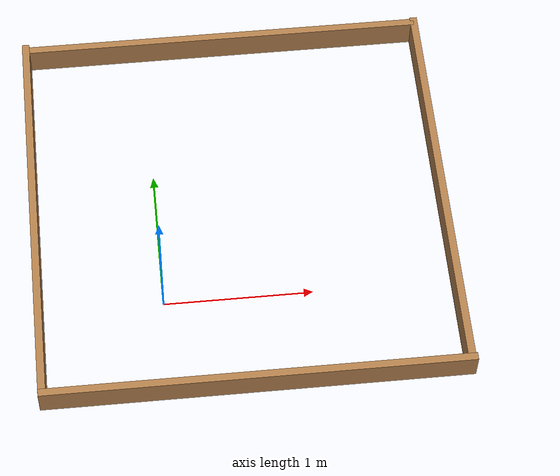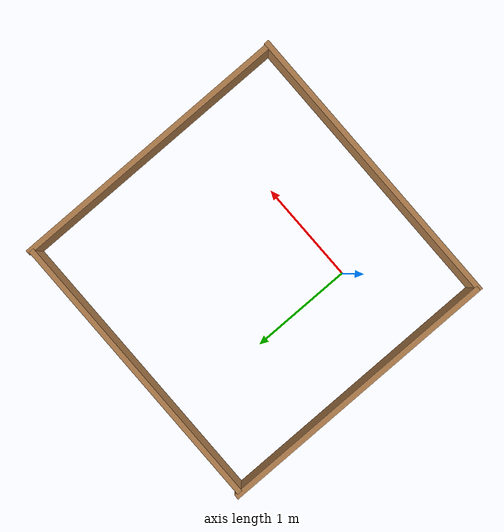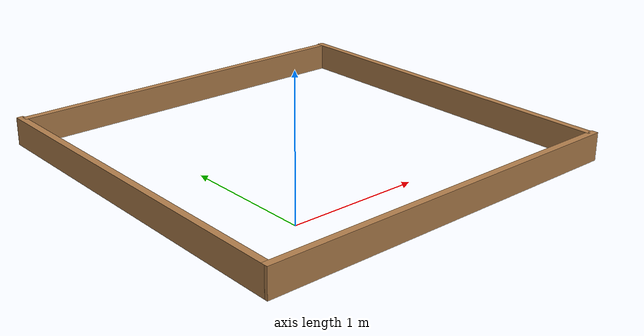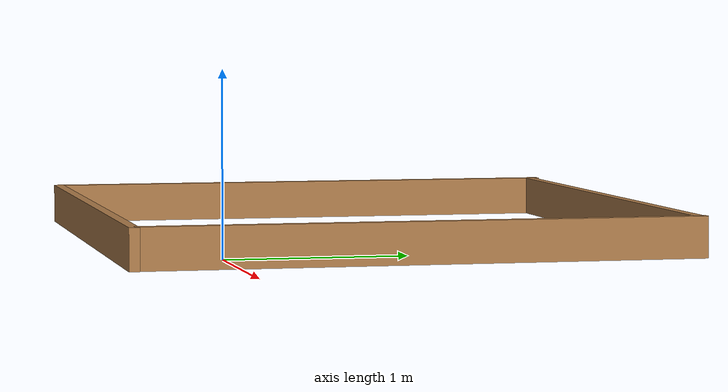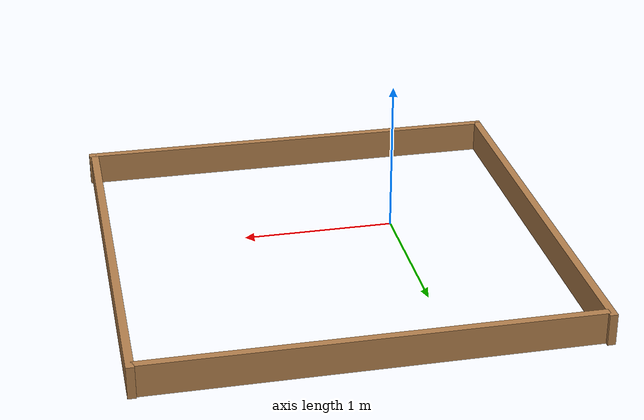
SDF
<?xml version='1.0'?>
<sdf version='1.6'>
  <model name='turtlebot3_square'>
    <link name='Wall_0'>
      <pose frame=''>0.557021 1.925 0 0 -0 0</pose>
      <self_collide>0</self_collide>
      <enable_wind>0</enable_wind>
      <kinematic>0</kinematic>
      <inertial>
        <inertia>
          <ixx>0</ixx>
          <ixy>0</ixy>
          <ixz>0</ixz>
          <iyy>0</iyy>
          <iyz>0</iyz>
          <izz>0</izz>
        </inertia>
        <mass>0</mass>
        <pose frame=''>0 0 0 0 -0 0</pose>
      </inertial>
      <visual name='Wall_0_Visual'>
        <pose frame=''>0 0 0.25 0 -0 0</pose>
        <geometry>
          <box>
            <size>2.7317 0.05 0.2</size>
          </box>
        </geometry>
        <material>
          <script>
            <uri>file://media/materials/scripts/gazebo.material</uri>
            <name>Gazebo/Wood</name>
          </script>
          <ambient>1 1 1 1</ambient>
        </material>
        <transparency>0</transparency>
        <cast_shadows>1</cast_shadows>
      </visual>
      <collision name='Wall_0_Collision'>
        <laser_retro>0</laser_retro>
        <max_contacts>10</max_contacts>
        <pose frame=''>0 0 0.25 0 -0 0</pose>
        <geometry>
          <box>
            <size>2.7317 0.05 0.2</size>
          </box>
        </geometry>
        <surface>
          <friction>
            <ode>
              <mu>1</mu>
              <mu2>1</mu2>
              <fdir1>0 0 0</fdir1>
              <slip1>0</slip1>
              <slip2>0</slip2>
            </ode>
            <torsional>
              <coefficient>1</coefficient>
              <patch_radius>0</patch_radius>
              <surface_radius>0</surface_radius>
              <use_patch_radius>1</use_patch_radius>
              <ode>
                <slip>0</slip>
              </ode>
            </torsional>
          </friction>
          <bounce>
            <restitution_coefficient>0</restitution_coefficient>
            <threshold>1e+06</threshold>
          </bounce>
          <contact>
            <collide_without_contact>0</collide_without_contact>
            <collide_without_contact_bitmask>1</collide_without_contact_bitmask>
            <collide_bitmask>1</collide_bitmask>
            <ode>
              <soft_cfm>0</soft_cfm>
              <soft_erp>0.2</soft_erp>
              <kp>1e+13</kp>
              <kd>1</kd>
              <max_vel>0.01</max_vel>
              <min_depth>0</min_depth>
            </ode>
            <bullet>
              <split_impulse>1</split_impulse>
              <split_impulse_penetration_threshold>-0.01</split_impulse_penetration_threshold>
              <soft_cfm>0</soft_cfm>
              <soft_erp>0.2</soft_erp>
              <kp>1e+13</kp>
              <kd>1</kd>
            </bullet>
          </contact>
        </surface>
      </collision>
    </link>
    <link name='Wall_2'>
      <pose frame=''>-0.819251 0.606379 0 0 0 -1.5708</pose>
      <self_collide>0</self_collide>
      <enable_wind>0</enable_wind>
      <kinematic>0</kinematic>
      <inertial>
        <inertia>
          <ixx>0</ixx>
          <ixy>0</ixy>
          <ixz>0</ixz>
          <iyy>0</iyy>
          <iyz>0</iyz>
          <izz>0</izz>
        </inertia>
        <mass>0</mass>
        <pose frame=''>0 0 0 0 -0 0</pose>
      </inertial>
      <visual name='Wall_2_Visual'>
        <pose frame=''>0 0 0.25 0 -0 0</pose>
        <geometry>
          <box>
            <size>2.73482 0.05 0.2</size>
          </box>
        </geometry>
        <material>
          <script>
            <uri>file://media/materials/scripts/gazebo.material</uri>
            <name>Gazebo/Wood</name>
          </script>
          <ambient>1 1 1 1</ambient>
        </material>
        <transparency>0</transparency>
        <cast_shadows>1</cast_shadows>
      </visual>
      <collision name='Wall_2_Collision'>
        <laser_retro>0</laser_retro>
        <max_contacts>10</max_contacts>
        <pose frame=''>0 0 0.25 0 -0 0</pose>
        <geometry>
          <box>
            <size>2.73482 0.05 0.2</size>
          </box>
        </geometry>
        <surface>
          <friction>
            <ode>
              <mu>1</mu>
              <mu2>1</mu2>
              <fdir1>0 0 0</fdir1>
              <slip1>0</slip1>
              <slip2>0</slip2>
            </ode>
            <torsional>
              <coefficient>1</coefficient>
              <patch_radius>0</patch_radius>
              <surface_radius>0</surface_radius>
              <use_patch_radius>1</use_patch_radius>
              <ode>
                <slip>0</slip>
              </ode>
            </torsional>
          </friction>
          <bounce>
            <restitution_coefficient>0</restitution_coefficient>
            <threshold>1e+06</threshold>
          </bounce>
          <contact>
            <collide_without_contact>0</collide_without_contact>
            <collide_without_contact_bitmask>1</collide_without_contact_bitmask>
            <collide_bitmask>1</collide_bitmask>
            <ode>
              <soft_cfm>0</soft_cfm>
              <soft_erp>0.2</soft_erp>
              <kp>1e+13</kp>
              <kd>1</kd>
              <max_vel>0.01</max_vel>
              <min_depth>0</min_depth>
            </ode>
            <bullet>
              <split_impulse>1</split_impulse>
              <split_impulse_penetration_threshold>-0.01</split_impulse_penetration_threshold>
              <soft_cfm>0</soft_cfm>
              <soft_erp>0.2</soft_erp>
              <kp>1e+13</kp>
              <kd>1</kd>
            </bullet>
          </contact>
        </surface>
      </collision>
    </link>
    <link name='Wall_3'>
      <pose frame=''>0.558829 -0.759815 0 0 -0 0</pose>
      <self_collide>0</self_collide>
      <enable_wind>0</enable_wind>
      <kinematic>0</kinematic>
      <inertial>
        <inertia>
          <ixx>0</ixx>
          <ixy>0</ixy>
          <ixz>0</ixz>
          <iyy>0</iyy>
          <iyz>0</iyz>
          <izz>0</izz>
        </inertia>
        <mass>0</mass>
        <pose frame=''>0 0 0 0 -0 0</pose>
      </inertial>
      <visual name='Wall_3_Visual'>
        <pose frame=''>0 0 0.25 0 -0 0</pose>
        <geometry>
          <box>
            <size>2.80543 0.05 0.2</size>
          </box>
        </geometry>
        <material>
          <script>
            <uri>file://media/materials/scripts/gazebo.material</uri>
            <name>Gazebo/Wood</name>
          </script>
          <ambient>1 1 1 1</ambient>
        </material>
        <transparency>0</transparency>
        <cast_shadows>1</cast_shadows>
      </visual>
      <collision name='Wall_3_Collision'>
        <laser_retro>0</laser_retro>
        <max_contacts>10</max_contacts>
        <pose frame=''>0 0 0.25 0 -0 0</pose>
        <geometry>
          <box>
            <size>2.80543 0.05 0.2</size>
          </box>
        </geometry>
        <surface>
          <friction>
            <ode>
              <mu>1</mu>
              <mu2>1</mu2>
              <fdir1>0 0 0</fdir1>
              <slip1>0</slip1>
              <slip2>0</slip2>
            </ode>
            <torsional>
              <coefficient>1</coefficient>
              <patch_radius>0</patch_radius>
              <surface_radius>0</surface_radius>
              <use_patch_radius>1</use_patch_radius>
              <ode>
                <slip>0</slip>
              </ode>
            </torsional>
          </friction>
          <bounce>
            <restitution_coefficient>0</restitution_coefficient>
            <threshold>1e+06</threshold>
          </bounce>
          <contact>
            <collide_without_contact>0</collide_without_contact>
            <collide_without_contact_bitmask>1</collide_without_contact_bitmask>
            <collide_bitmask>1</collide_bitmask>
            <ode>
              <soft_cfm>0</soft_cfm>
              <soft_erp>0.2</soft_erp>
              <kp>1e+13</kp>
              <kd>1</kd>
              <max_vel>0.01</max_vel>
              <min_depth>0</min_depth>
            </ode>
            <bullet>
              <split_impulse>1</split_impulse>
              <split_impulse_penetration_threshold>-0.01</split_impulse_penetration_threshold>
              <soft_cfm>0</soft_cfm>
              <soft_erp>0.2</soft_erp>
              <kp>1e+13</kp>
              <kd>1</kd>
            </bullet>
          </contact>
        </surface>
      </collision>
    </link>
    <link name='Wall_4'>
      <pose frame=''>1.925 0.603331 0 0 -0 1.5708</pose>
      <self_collide>0</self_collide>
      <enable_wind>0</enable_wind>
      <kinematic>0</kinematic>
      <inertial>
        <inertia>
          <ixx>0</ixx>
          <ixy>0</ixy>
          <ixz>0</ixz>
          <iyy>0</iyy>
          <iyz>0</iyz>
          <izz>0</izz>
        </inertia>
        <mass>0</mass>
        <pose frame=''>0 0 0 0 -0 0</pose>
      </inertial>
      <visual name='Wall_4_Visual'>
        <pose frame=''>0 0 0.25 0 -0 0</pose>
        <geometry>
          <box>
            <size>2.71507 0.05 0.2</size>
          </box>
        </geometry>
        <material>
          <script>
            <uri>file://media/materials/scripts/gazebo.material</uri>
            <name>Gazebo/Wood</name>
          </script>
          <ambient>1 1 1 1</ambient>
        </material>
        <transparency>0</transparency>
        <cast_shadows>1</cast_shadows>
      </visual>
      <collision name='Wall_4_Collision'>
        <laser_retro>0</laser_retro>
        <max_contacts>10</max_contacts>
        <pose frame=''>0 0 0.25 0 -0 0</pose>
        <geometry>
          <box>
            <size>2.71507 0.05 0.2</size>
          </box>
        </geometry>
        <surface>
          <friction>
            <ode>
              <mu>1</mu>
              <mu2>1</mu2>
              <fdir1>0 0 0</fdir1>
              <slip1>0</slip1>
              <slip2>0</slip2>
            </ode>
            <torsional>
              <coefficient>1</coefficient>
              <patch_radius>0</patch_radius>
              <surface_radius>0</surface_radius>
              <use_patch_radius>1</use_patch_radius>
              <ode>
                <slip>0</slip>
              </ode>
            </torsional>
          </friction>
          <bounce>
            <restitution_coefficient>0</restitution_coefficient>
            <threshold>1e+06</threshold>
          </bounce>
          <contact>
            <collide_without_contact>0</collide_without_contact>
            <collide_without_contact_bitmask>1</collide_without_contact_bitmask>
            <collide_bitmask>1</collide_bitmask>
            <ode>
              <soft_cfm>0</soft_cfm>
              <soft_erp>0.2</soft_erp>
              <kp>1e+13</kp>
              <kd>1</kd>
              <max_vel>0.01</max_vel>
              <min_depth>0</min_depth>
            </ode>
            <bullet>
              <split_impulse>1</split_impulse>
              <split_impulse_penetration_threshold>-0.01</split_impulse_penetration_threshold>
              <soft_cfm>0</soft_cfm>
              <soft_erp>0.2</soft_erp>
              <kp>1e+13</kp>
              <kd>1</kd>
            </bullet>
          </contact>
        </surface>
      </collision>
    </link>
    <static>1</static>
    <allow_auto_disable>1</allow_auto_disable>
  </model>
</sdf>
